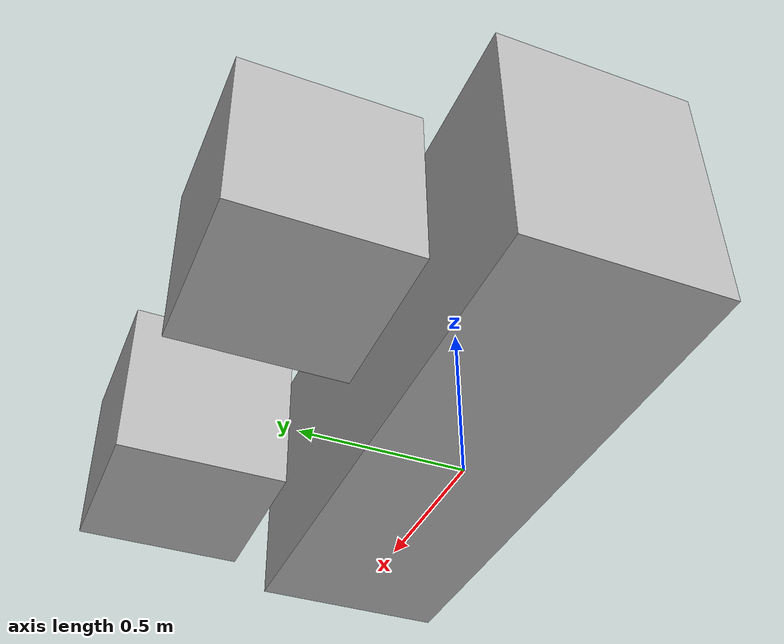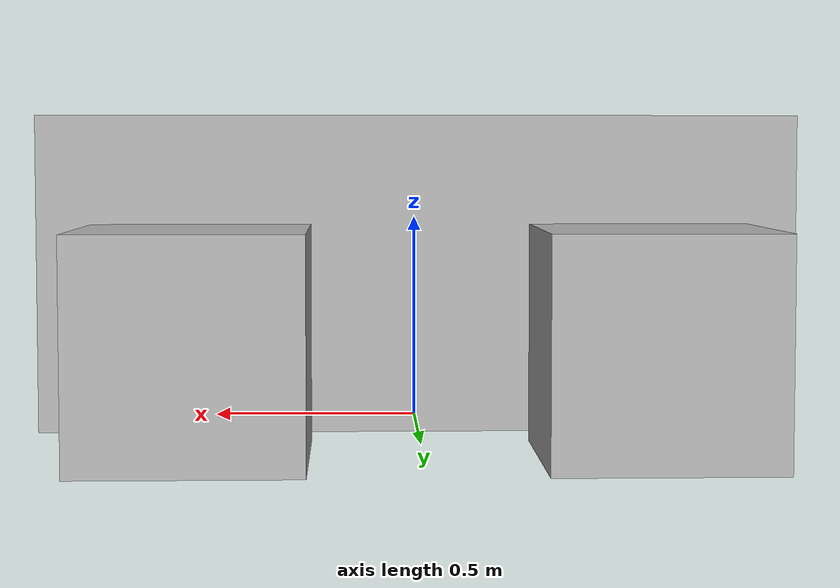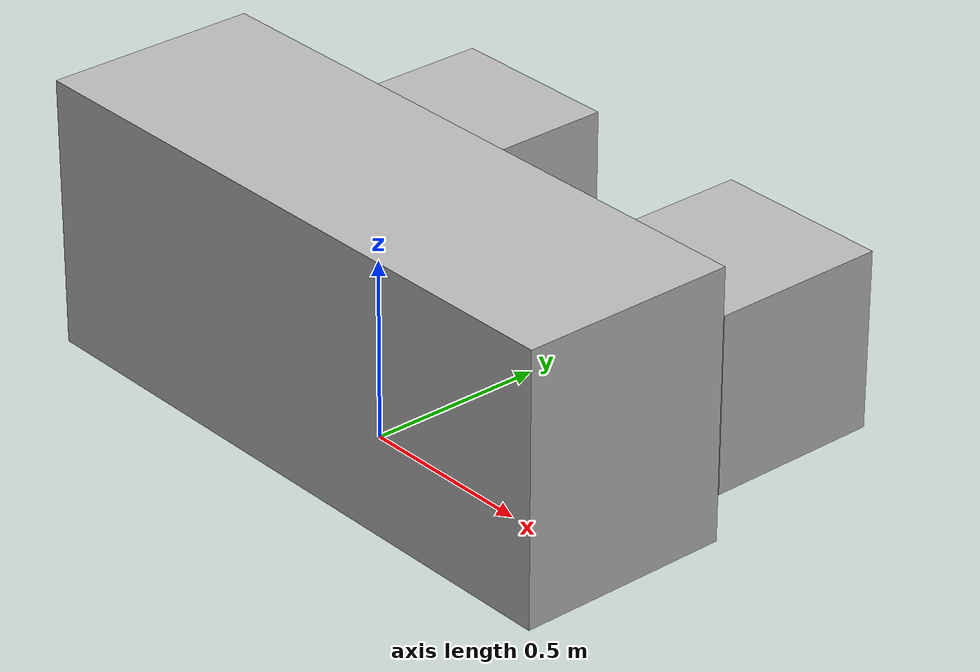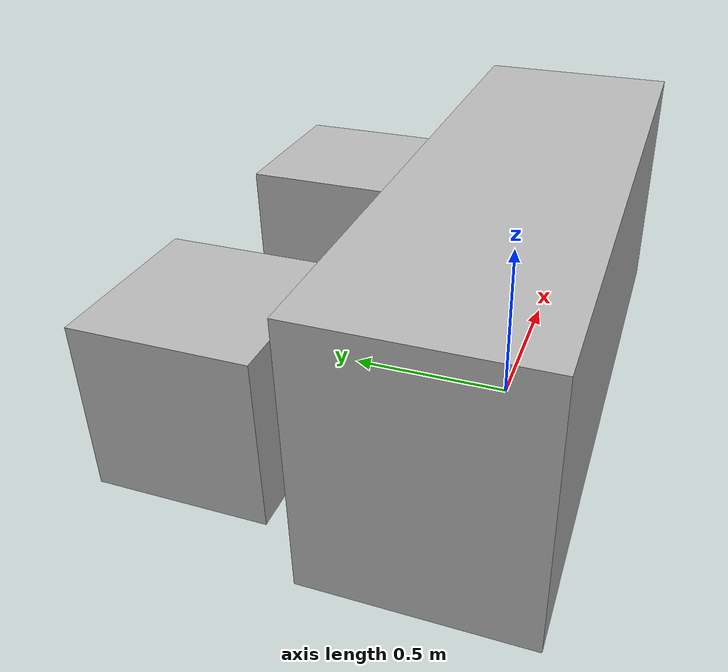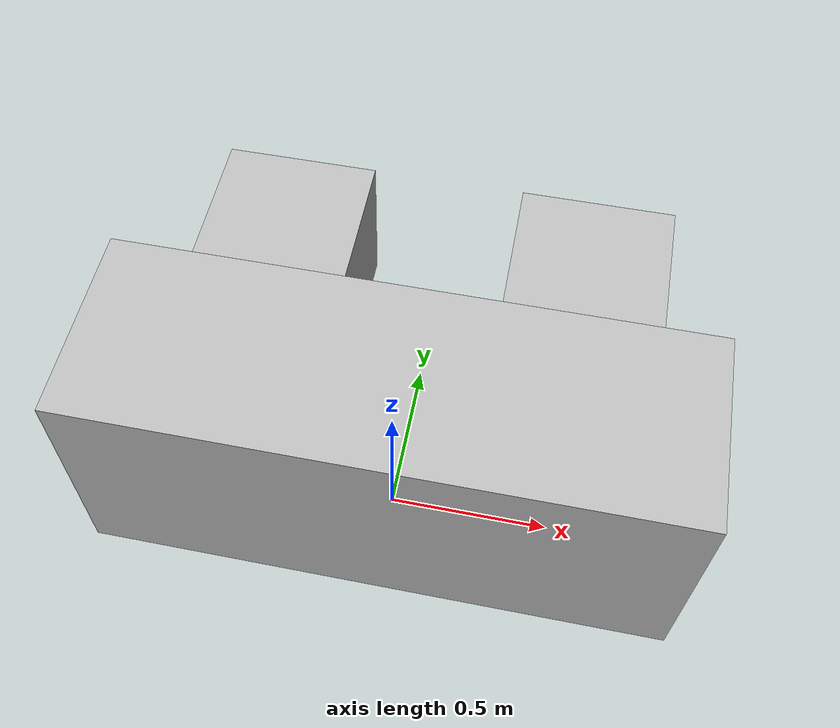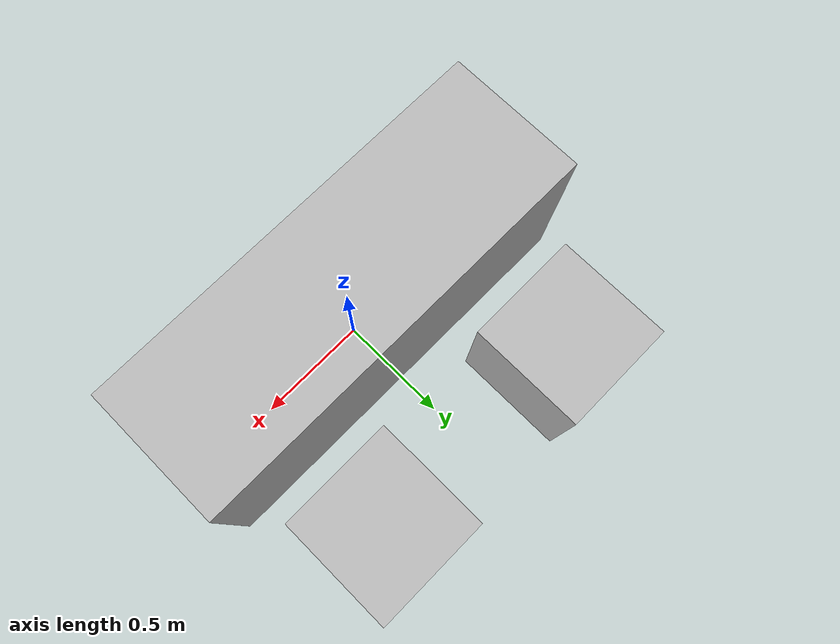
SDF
<?xml version="1.0" ?>
<sdf version='1.6'>
    <model name='Operational_Table'>
        <static>true</static>
        <!-- Table -->
        <link name="table">
            <pose>0 0 0.375 0 0 0</pose>
            <collision name="visual">
                <geometry>
                    <box>
                        <size>1.8 0.6 0.75</size>
                    </box>
                </geometry>
            </collision>
            <visual name="visual">
                <geometry>
                    <box>
                        <size>1.8 0.6 0.75</size>
                    </box>
                </geometry>
                <material>
                    <script>
                        <uri>model://Operational_Table/materials/scripts</uri>
                        <uri>model://Operational_Table/materials/textures</uri>
                        <name>Table/Operational_Table</name>
                    </script>
                </material>
            </visual>
        </link>
        <!-- Chair_Upper_Left -->
        <link name="chair_upper_left">
            <pose>0.5 0.7 0.25 0 0 0</pose>
            <collision name="visual">
                <geometry>
                    <box>
                        <size>0.5 0.5 0.5</size>
                    </box>
                </geometry>
            </collision>
            <visual name="visual">
                <geometry>
                    <box>
                        <size>0.5 0.5 0.5</size>
                    </box>
                </geometry>
                <material>
                    <script>
                        <uri>model://Operational_Table/materials/scripts</uri>
                        <uri>model://Operational_Table/materials/textures</uri>
                        <name>Table/Operational_Table</name>
                    </script>
                </material>
            </visual>
        </link>
        <!-- Chair_Lower_Left -->
        <link name="chair_lower_left">
            <pose>-0.5 0.7 0.25 0 0 0</pose>
            <collision name="visual">
                <geometry>
                    <box>
                        <size>0.5 0.5 0.5</size>
                    </box>
                </geometry>
            </collision>
            <visual name="visual">
                <geometry>
                    <box>
                        <size>0.5 0.5 0.5</size>
                    </box>
                </geometry>
                <material>
                    <script>
                        <uri>model://Operational_Table/materials/scripts</uri>
                        <uri>model://Operational_Table/materials/textures</uri>
                        <name>Table/Operational_Table</name>
                    </script>
                </material>
            </visual>
        </link>
    </model>
</sdf>
